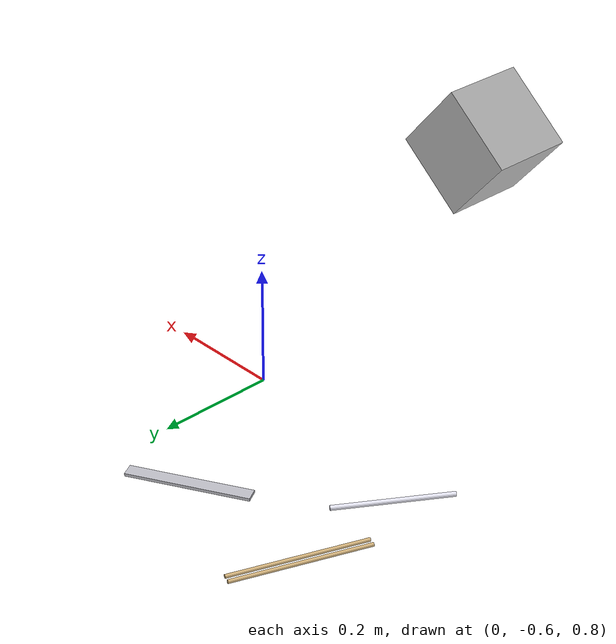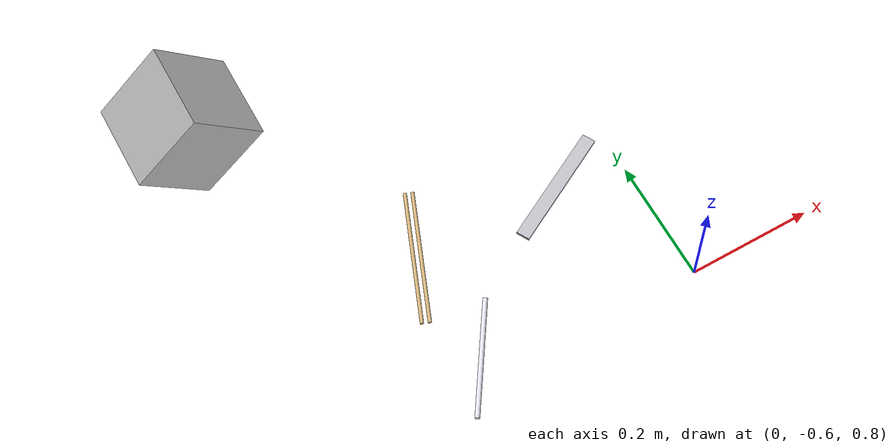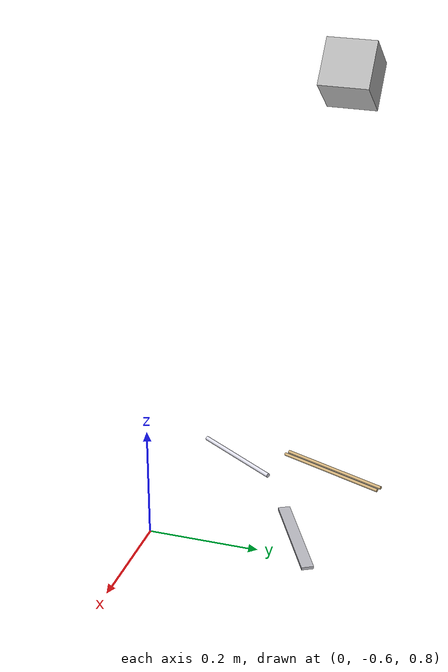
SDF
<sdf version="1.10">
 <world name="bps_room">
  <model name="obj_knife">
   <static>false</static>
   <pose>-0.10000000000000001 -0.35999999999999999 0.77249999999999996 0 0 0.49999999999999994</pose>
   <link name="link">
    <collision name="collision">
     <geometry><box><size>0.20000000000000001 0.021999999999999999 0.0050000000000000001</size></box></geometry>
    </collision>
    <visual name="visual">
     <geometry><box><size>0.20000000000000001 0.021999999999999999 0.0050000000000000001</size></box></geometry>
     <material>
      <ambient>0.75 0.75 0.779999971 1</ambient>
      <diffuse>0.75 0.75 0.779999971 1</diffuse>
      <specular>0.600000024 0.600000024 0.600000024 1</specular>
     </material>
     <plugin name="gz::sim::systems::Label" filename="gz-sim-label-system"><label>9</label></plugin>
    </visual>
    <inertial>
     <mass>1</mass>
     <inertia><ixx>1</ixx><ixy>0</ixy><ixz>0</ixz><iyy>1</iyy><iyz>0</iyz><izz>1</izz></inertia>
    </inertial>
    <sensor name="obj_knife_contact_sensor" type="contact">
     <contact><collision>collision</collision></contact>
     <update_rate>30</update_rate>
     <always_on>true</always_on>
    </sensor>
   </link>
  </model>
  <model name="obj_chopstick_a">
   <static>false</static>
   <pose>-0.34000000000000002 -0.35999999999999999 0.77300000000000002 -3.1415926535595684 1.5707926535755432 -1.9415926535293082</pose>
   <link name="link">
    <collision name="collision">
     <geometry><cylinder><radius>0.0030000000000000001</radius><length>0.22</length></cylinder></geometry>
    </collision>
    <visual name="visual">
     <geometry><cylinder><radius>0.0030000000000000001</radius><length>0.22</length></cylinder></geometry>
     <material>
      <ambient>0.850000024 0.720000029 0.5 1</ambient>
      <diffuse>0.850000024 0.720000029 0.5 1</diffuse>
      <specular>0.200000003 0.200000003 0.200000003 1</specular>
     </material>
     <plugin name="gz::sim::systems::Label" filename="gz-sim-label-system"><label>13</label></plugin>
    </visual>
    <inertial>
     <mass>1</mass>
     <inertia><ixx>1</ixx><ixy>0</ixy><ixz>0</ixz><iyy>1</iyy><iyz>0</iyz><izz>1</izz></inertia>
    </inertial>
    <sensor name="obj_chopstick_a_contact_sensor" type="contact">
     <contact><collision>collision</collision></contact>
     <update_rate>30</update_rate>
     <always_on>true</always_on>
    </sensor>
   </link>
  </model>
  <model name="obj_chopstick_b">
   <static>false</static>
   <pose>-0.35120000000000001 -0.35570000000000002 0.77300000000000002 -3.1415926535595684 1.5707926535755432 -1.9415926535293082</pose>
   <link name="link">
    <collision name="collision">
     <geometry><cylinder><radius>0.0030000000000000001</radius><length>0.22</length></cylinder></geometry>
    </collision>
    <visual name="visual">
     <geometry><cylinder><radius>0.0030000000000000001</radius><length>0.22</length></cylinder></geometry>
     <material>
      <ambient>0.850000024 0.720000029 0.5 1</ambient>
      <diffuse>0.850000024 0.720000029 0.5 1</diffuse>
      <specular>0.200000003 0.200000003 0.200000003 1</specular>
     </material>
     <plugin name="gz::sim::systems::Label" filename="gz-sim-label-system"><label>18</label></plugin>
    </visual>
    <inertial>
     <mass>1</mass>
     <inertia><ixx>1</ixx><ixy>0</ixy><ixz>0</ixz><iyy>1</iyy><iyz>0</iyz><izz>1</izz></inertia>
    </inertial>
    <sensor name="obj_chopstick_b_contact_sensor" type="contact">
     <contact><collision>collision</collision></contact>
     <update_rate>30</update_rate>
     <always_on>true</always_on>
    </sensor>
   </link>
  </model>
  <model name="obj_straw">
   <static>false</static>
   <pose>-0.34000000000000002 -0.55000000000000004 0.77400000000000002 3.1415926535142304 1.5707926536359933 -2.1415926536640555</pose>
   <link name="link">
    <collision name="collision">
     <geometry><cylinder><radius>0.0040000000000000001</radius><length>0.19</length></cylinder></geometry>
    </collision>
    <visual name="visual">
     <geometry><cylinder><radius>0.0040000000000000001</radius><length>0.19</length></cylinder></geometry>
     <material>
      <ambient>0.899999976 0.899999976 0.949999988 1</ambient>
      <diffuse>0.899999976 0.899999976 0.949999988 1</diffuse>
      <specular>0.5 0.5 0.5 1</specular>
     </material>
     <plugin name="gz::sim::systems::Label" filename="gz-sim-label-system"><label>14</label></plugin>
    </visual>
    <inertial>
     <mass>1</mass>
     <inertia><ixx>1</ixx><ixy>0</ixy><ixz>0</ixz><iyy>1</iyy><iyz>0</iyz><izz>1</izz></inertia>
    </inertial>
    <sensor name="obj_straw_contact_sensor" type="contact">
     <contact><collision>collision</collision></contact>
     <update_rate>30</update_rate>
     <always_on>true</always_on>
    </sensor>
   </link>
  </model>
  <model name="depth_camera_v4">
   <static>true</static>
   <pose>-0.6675342763532061 -0.4510466666666666 1.497744443118978 -0.0 0.8726646259971648 -8.636002062691952e-17</pose>
   <link name="link">
    <pose>0.050000000000000003 0.050000000000000003 0.050000000000000003 0 0 0</pose>
    <inertial>
     <mass>0.10000000000000001</mass>
     <inertia>
      <ixx>0.00016666700000000001</ixx>
      <iyy>0.00016666700000000001</iyy>
      <izz>0.00016666700000000001</izz>
      <ixy>0</ixy>
      <ixz>0</ixz>
      <iyz>0</iyz>
     </inertia>
    </inertial>
    <collision name="collision">
     <geometry><box><size>0.10000000000000001 0.10000000000000001 0.10000000000000001</size></box></geometry>
    </collision>
    <visual name="visual">
     <geometry><box><size>0.10000000000000001 0.10000000000000001 0.10000000000000001</size></box></geometry>
    </visual>
    <sensor name="depth_camera4" type="depth_camera">
     <topic>depth_camera_v4</topic>
     <update_rate>10</update_rate>
     <enable_metrics>false</enable_metrics>
     <camera>
      <horizontal_fov>1.2</horizontal_fov>
      <image>
       <width>640</width>
       <height>480</height>
       <format>R_FLOAT32</format>
       <anti_aliasing>4</anti_aliasing>
      </image>
      <camera_info_topic>__default__</camera_info_topic>
      <triggered>false</triggered>
      <clip><near>0.10000000000000001</near><far>2</far></clip>
      <save enabled="false"><path>__default__</path></save>
      <visibility_mask>4294967295</visibility_mask>
      <noise><type>none</type><mean>0</mean><stddev>0</stddev></noise>
      <distortion><k1>0</k1><k2>0</k2><k3>0</k3><p1>0</p1><p2>0</p2><center>0.5 0.5</center></distortion>
      <lens>
       <type>stereographic</type>
       <scale_to_hfov>true</scale_to_hfov>
       <cutoff_angle>1.5707963267948966</cutoff_angle>
       <env_texture_size>256</env_texture_size>
      </lens>
     </camera>
    </sensor>
    <sensor name="rgb_camera4" type="camera">
     <topic>rgb_camera_v4</topic>
     <update_rate>10</update_rate>
     <enable_metrics>false</enable_metrics>
     <camera>
      <horizontal_fov>1.2</horizontal_fov>
      <image><width>640</width><height>480</height><format>RGB_INT8</format><anti_aliasing>4</anti_aliasing></image>
      <camera_info_topic>__default__</camera_info_topic>
      <triggered>false</triggered>
      <clip><near>0.10000000000000001</near><far>2</far></clip>
      <save enabled="false"><path>__default__</path></save>
      <visibility_mask>4294967295</visibility_mask>
      <noise><type>none</type><mean>0</mean><stddev>0</stddev></noise>
      <distortion><k1>0</k1><k2>0</k2><k3>0</k3><p1>0</p1><p2>0</p2><center>0.5 0.5</center></distortion>
      <lens>
       <type>stereographic</type>
       <scale_to_hfov>true</scale_to_hfov>
       <cutoff_angle>1.5707963267948966</cutoff_angle>
       <env_texture_size>256</env_texture_size>
      </lens>
     </camera>
    </sensor>
    <sensor name="semantic_camera4" type="segmentation_camera">
     <topic>semantic_camera_v4</topic>
     <update_rate>10</update_rate>
     <enable_metrics>false</enable_metrics>
     <camera>
      <horizontal_fov>1.2</horizontal_fov>
      <image><width>640</width><height>480</height></image>
      <clip><near>0.1</near><far>100</far></clip>
      <segmentation_type>semantic</segmentation_type>
     </camera>
    </sensor>
   </link>
  </model>
 </world>
</sdf>
